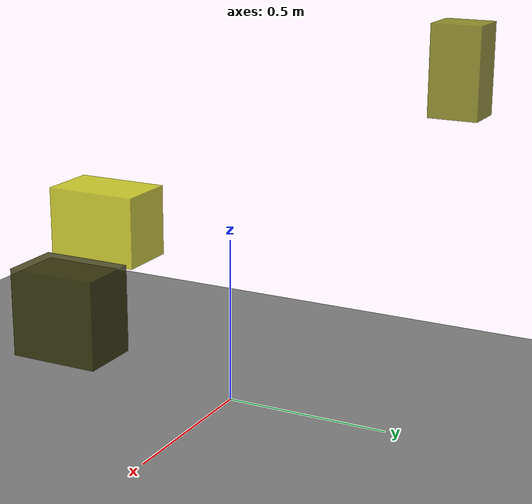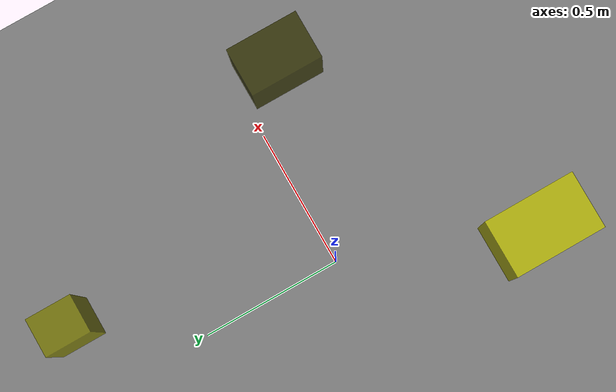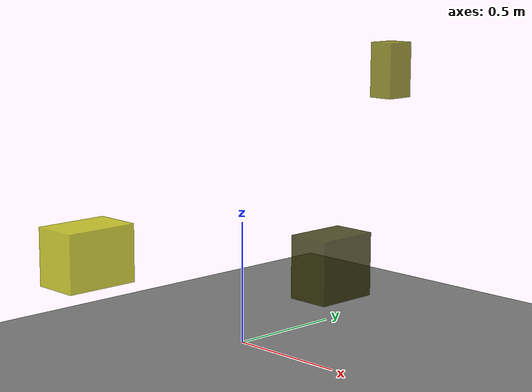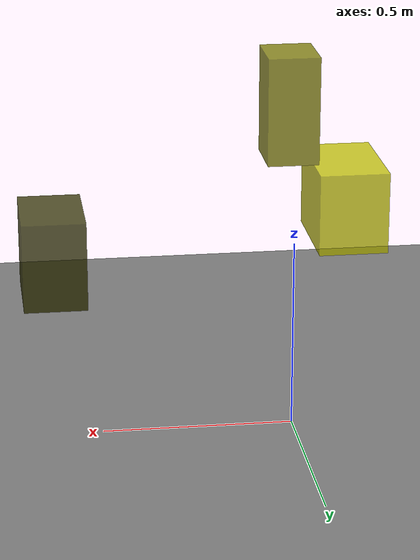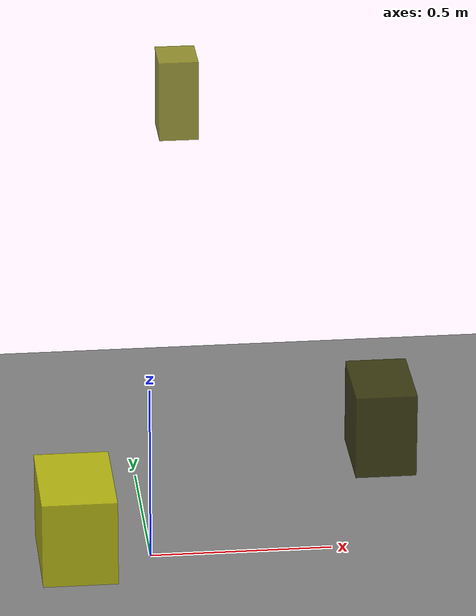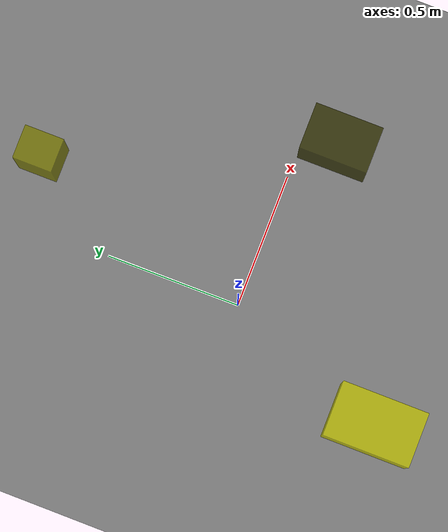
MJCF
<?xml version="1.0"?>
<mujoco model="obstacle_scene">
  <compiler angle="radian" coordinate="local"/>
  <option timestep="0.001" gravity="0 0 -9.81"/>

  <asset>
    <material name="obstacle_mat" rgba="0.8 0.8 0.0 0.8"/>
    <material name="ground_mat" rgba="0.5 0.5 0.5 1"/>
  </asset>

  <worldbody>
    <!-- Ground plane -->
    <geom name="ground" type="plane" size="3 3 0.1" material="ground_mat"/>

    <!-- Obstacles -->
    <body name="obstacle_0" pos="0.614350 -0.137307 0.454530">
      <geom name="obs_0" type="box" size="0.082244 0.121815 0.117441" rgba="0.2 0.2 0.0 0.8"/>
    </body>
    <body name="obstacle_1" pos="0.143124 0.724952 1.076547">
      <geom name="obs_1" type="box" size="0.054993 0.064429 0.116250" rgba="0.5 0.5 0.0 0.8"/>
    </body>
    <body name="obstacle_2" pos="-0.247307 -0.592160 0.419002">
      <geom name="obs_2" type="box" size="0.097975 0.154050 0.116834" rgba="0.8 0.8 0.0 0.8"/>
    </body>
  </worldbody>
</mujoco>
